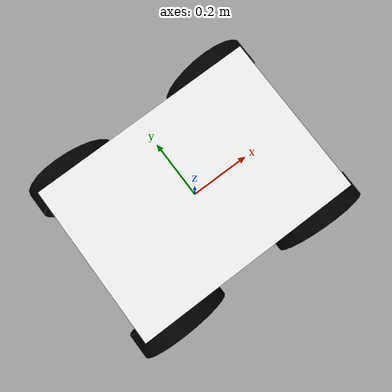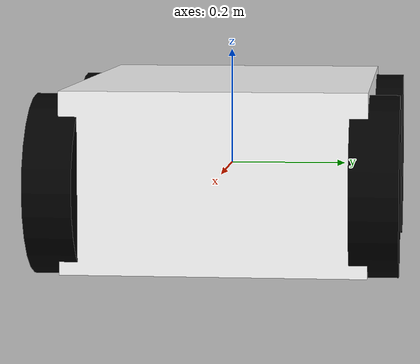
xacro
<?xml version="1.0"?>
<robot name="antobot_ant" xmlns:xacro="http://ros.org/wiki/xacro">

  <!-- Properties -->
  <xacro:property name="PI" value="3.14159"/>

  <!-- Base link -->
  <link name="base_link">
    <visual>
      <origin xyz="0 0 0" rpy="0 0 0"/>
      <geometry>
        <box size="0.7 0.5 0.3"/>
      </geometry>
      <material name="white">
        <color rgba="1.0 1.0 1.0 1.0"/>
      </material>
    </visual>
    <collision>
      <origin xyz="0 0 0" rpy="0 0 0"/>
      <geometry>
        <box size="0.7 0.5 0.3"/>
      </geometry>
    </collision>
    <inertial>
      <origin xyz="0 0 0" rpy="0 0 0"/>
      <mass value="50.0"/>
      <inertia ixx="2.0" ixy="0.0" ixz="0.0" iyy="2.0" iyz="0.0" izz="2.0"/>
    </inertial>
  </link>

  <!-- Left front wheel -->
  <link name="wheel_left_front_link">
    <visual>
      <origin xyz="0 0 0" rpy="${PI/2} 0 0"/>
      <geometry>
        <cylinder radius="0.15" length="0.08"/>
      </geometry>
      <material name="black">
        <color rgba="0.0 0.0 0.0 1.0"/>
      </material>
    </visual>
    <collision>
      <origin xyz="0 0 0" rpy="${PI/2} 0 0"/>
      <geometry>
        <cylinder radius="0.15" length="0.08"/>
      </geometry>
    </collision>
    <inertial>
      <origin xyz="0 0 0" rpy="0 0 0"/>
      <mass value="2.0"/>
      <inertia ixx="0.1" ixy="0.0" ixz="0.0" iyy="0.1" iyz="0.0" izz="0.1"/>
    </inertial>
  </link>

  <joint name="wheel_left_front_joint" type="continuous">
    <parent link="base_link"/>
    <child link="wheel_left_front_link"/>
    <origin xyz="0.26 0.26 -0.01" rpy="0 0 0"/>
    <axis xyz="0 1 0"/>
  </joint>

  <!-- Left rear wheel -->
  <link name="wheel_left_rear_link">
    <visual>
      <origin xyz="0 0 0" rpy="${PI/2} 0 0"/>
      <geometry>
        <cylinder radius="0.15" length="0.08"/>
      </geometry>
      <material name="black"/>
    </visual>
    <collision>
      <origin xyz="0 0 0" rpy="${PI/2} 0 0"/>
      <geometry>
        <cylinder radius="0.15" length="0.08"/>
      </geometry>
    </collision>
    <inertial>
      <origin xyz="0 0 0" rpy="0 0 0"/>
      <mass value="2.0"/>
      <inertia ixx="0.1" ixy="0.0" ixz="0.0" iyy="0.1" iyz="0.0" izz="0.1"/>
    </inertial>
  </link>

  <joint name="wheel_left_rear_joint" type="continuous">
    <parent link="base_link"/>
    <child link="wheel_left_rear_link"/>
    <origin xyz="-0.26 0.26 -0.01" rpy="0 0 0"/>
    <axis xyz="0 1 0"/>
  </joint>

  <!-- Right front wheel -->
  <link name="wheel_right_front_link">
    <visual>
      <origin xyz="0 0 0" rpy="${PI/2} 0 0"/>
      <geometry>
        <cylinder radius="0.15" length="0.08"/>
      </geometry>
      <material name="black"/>
    </visual>
    <collision>
      <origin xyz="0 0 0" rpy="${PI/2} 0 0"/>
      <geometry>
        <cylinder radius="0.15" length="0.08"/>
      </geometry>
    </collision>
    <inertial>
      <origin xyz="0 0 0" rpy="0 0 0"/>
      <mass value="2.0"/>
      <inertia ixx="0.1" ixy="0.0" ixz="0.0" iyy="0.1" iyz="0.0" izz="0.1"/>
    </inertial>
  </link>

  <joint name="wheel_right_front_joint" type="continuous">
    <parent link="base_link"/>
    <child link="wheel_right_front_link"/>
    <origin xyz="0.26 -0.26 -0.01" rpy="0 0 0"/>
    <axis xyz="0 1 0"/>
  </joint>

  <!-- Right rear wheel -->
  <link name="wheel_right_rear_link">
    <visual>
      <origin xyz="0 0 0" rpy="${PI/2} 0 0"/>
      <geometry>
        <cylinder radius="0.15" length="0.08"/>
      </geometry>
      <material name="black"/>
    </visual>
    <collision>
      <origin xyz="0 0 0" rpy="${PI/2} 0 0"/>
      <geometry>
        <cylinder radius="0.15" length="0.08"/>
      </geometry>
    </collision>
    <inertial>
      <origin xyz="0 0 0" rpy="0 0 0"/>
      <mass value="2.0"/>
      <inertia ixx="0.1" ixy="0.0" ixz="0.0" iyy="0.1" iyz="0.0" izz="0.1"/>
    </inertial>
  </link>

  <joint name="wheel_right_rear_joint" type="continuous">
    <parent link="base_link"/>
    <child link="wheel_right_rear_link"/>
    <origin xyz="-0.26 -0.26 -0.01" rpy="0 0 0"/>
    <axis xyz="0 1 0"/>
  </joint>

  <!-- Material definitions -->
  <gazebo reference="base_link">
    <material>Gazebo/White</material>
  </gazebo>

  <gazebo reference="wheel_left_front_link">
    <material>Gazebo/Black</material>
  </gazebo>

  <gazebo reference="wheel_left_rear_link">
    <material>Gazebo/Black</material>
  </gazebo>

  <gazebo reference="wheel_right_front_link">
    <material>Gazebo/Black</material>
  </gazebo>

  <gazebo reference="wheel_right_rear_link">
    <material>Gazebo/Black</material>
  </gazebo>

  <!-- Ignition Gazebo plugin for differential drive -->
  <gazebo>
    <plugin
      filename="ignition-gazebo-diff-drive-system"
      name="ignition::gazebo::systems::DiffDrive">
      <left_joint>wheel_left_front_joint</left_joint>
      <left_joint>wheel_left_rear_joint</left_joint>
      <right_joint>wheel_right_front_joint</right_joint>
      <right_joint>wheel_right_rear_joint</right_joint>
      <wheel_separation>0.52</wheel_separation>
      <wheel_radius>0.15</wheel_radius>
      <odom_publish_frequency>1</odom_publish_frequency>
      <max_linear_acceleration>1</max_linear_acceleration>
      <min_linear_acceleration>-1</min_linear_acceleration>
      <max_angular_acceleration>2</max_angular_acceleration>
      <min_angular_acceleration>-2</min_angular_acceleration>
      <max_linear_velocity>0.5</max_linear_velocity>
      <min_linear_velocity>-0.5</min_linear_velocity>
      <max_angular_velocity>1</max_angular_velocity>
      <min_angular_velocity>-1</min_angular_velocity>
    </plugin>

    <plugin
      filename="ignition-gazebo-joint-state-publisher-system"
      name="ignition::gazebo::systems::JointStatePublisher">
    </plugin>

    <plugin
      filename="ignition-gazebo-pose-publisher-system"
      name="ignition::gazebo::systems::PosePublisher">
      <publish_link_pose>true</publish_link_pose>
      <use_pose_vector_msg>true</use_pose_vector_msg>
      <static_publisher>true</static_publisher>
      <static_update_frequency>1</static_update_frequency>
    </plugin>

    <plugin
      filename="ignition-gazebo-odometry-publisher-system"
      name="ignition::gazebo::systems::OdometryPublisher">
      <odom_frame>odom</odom_frame>
      <robot_base_frame>base_link</robot_base_frame>
    </plugin>
  </gazebo>
</robot>
